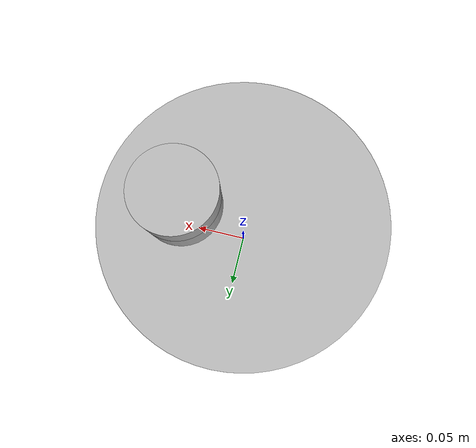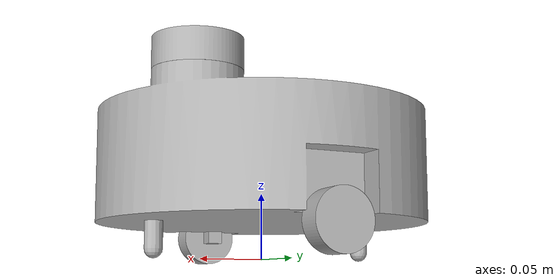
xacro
<?xml version="1.0" ?>
<robot name="amvcr" xmlns:xacro="http://www.ros.org/wiki/xacro">

<xacro:include filename="$(find amvcr_description)/urdf/materials.xacro" />
<xacro:include filename="$(find amvcr_description)/urdf/amvcr.trans" />
<xacro:include filename="$(find amvcr_description)/urdf/amvcr.gazebo" />
<link name="base_link">
  <inertial>
    <origin xyz="0.0019434846856806773 1.1685172611447414e-16 0.07153434518302298" rpy="0 0 0"/>
    <mass value="1.849317492576436"/>
    <inertia ixx="0.010933" iyy="0.011094" izz="0.017845" ixy="-0.0" iyz="0.0" ixz="-0.000233"/>
  </inertial>
  <visual>
    <origin xyz="0 0 0" rpy="0 0 0"/>
    <geometry>
      <mesh filename="file://$(find amvcr_description)/meshes/base_link.stl" scale="0.001 0.001 0.001"/>
    </geometry>
    <material name="silver"/>
  </visual>
  <collision>
    <origin xyz="0 0 0" rpy="0 0 0"/>
    <geometry>
      <mesh filename="file://$(find amvcr_description)/meshes/base_link.stl" scale="0.001 0.001 0.001"/>
    </geometry>
  </collision>
</link>

<link name="left_wheel_1">
  <inertial>
    <origin xyz="5.192212519479262e-18 0.009000170419138878 -7.450579389556289e-11" rpy="0 0 0"/>
    <mass value="0.025453686334209087"/>
    <inertia ixx="4e-06" iyy="6e-06" izz="4e-06" ixy="0.0" iyz="0.0" ixz="0.0"/>
  </inertial>
  <visual>
    <origin xyz="-0.0 -0.106049 -0.022" rpy="0 0 0"/>
    <geometry>
      <mesh filename="file://$(find amvcr_description)/meshes/left_wheel_1.stl" scale="0.001 0.001 0.001"/>
    </geometry>
    <material name="silver"/>
  </visual>
  <collision>
    <origin xyz="-0.0 -0.106049 -0.022" rpy="0 0 0"/>
    <geometry>
      <mesh filename="file://$(find amvcr_description)/meshes/left_wheel_1.stl" scale="0.001 0.001 0.001"/>
    </geometry>
  </collision>
</link>

<link name="right_wheel_1">
  <inertial>
    <origin xyz="5.192212519479262e-18 -0.009000170419138837 -7.450579389556289e-11" rpy="0 0 0"/>
    <mass value="0.025453686334209087"/>
    <inertia ixx="4e-06" iyy="6e-06" izz="4e-06" ixy="0.0" iyz="0.0" ixz="0.0"/>
  </inertial>
  <visual>
    <origin xyz="-0.0 0.106049 -0.022" rpy="0 0 0"/>
    <geometry>
      <mesh filename="file://$(find amvcr_description)/meshes/right_wheel_1.stl" scale="0.001 0.001 0.001"/>
    </geometry>
    <material name="silver"/>
  </visual>
  <collision>
    <origin xyz="-0.0 0.106049 -0.022" rpy="0 0 0"/>
    <geometry>
      <mesh filename="file://$(find amvcr_description)/meshes/right_wheel_1.stl" scale="0.001 0.001 0.001"/>
    </geometry>
  </collision>
</link>

<link name="lidar_1">
  <inertial>
    <origin xyz="1.3877787807814457e-17 -5.9081868368592115e-18 0.012500000000000039" rpy="0 0 0"/>
    <mass value="0.09159313381541043"/>
    <inertia ixx="3.3e-05" iyy="3.3e-05" izz="5.6e-05" ixy="-0.0" iyz="-0.0" ixz="0.0"/>
  </inertial>
  <visual>
    <origin xyz="-0.0535 -0.0 -0.141" rpy="0 0 0"/>
    <geometry>
      <mesh filename="file://$(find amvcr_description)/meshes/lidar_1.stl" scale="0.001 0.001 0.001"/>
    </geometry>
    <material name="silver"/>
  </visual>
  <collision>
    <origin xyz="-0.0535 -0.0 -0.141" rpy="0 0 0"/>
    <geometry>
      <mesh filename="file://$(find amvcr_description)/meshes/lidar_1.stl" scale="0.001 0.001 0.001"/>
    </geometry>
  </collision>
</link>

<joint name="basetoleft" type="continuous">
  <origin xyz="0.0 0.106049 0.022" rpy="0 0 0"/>
  <parent link="base_link"/>
  <child link="left_wheel_1"/>
  <axis xyz="0.0 1.0 0.0"/>
</joint>

<joint name="basetoright" type="continuous">
  <origin xyz="0.0 -0.106049 0.022" rpy="0 0 0"/>
  <parent link="base_link"/>
  <child link="right_wheel_1"/>
  <axis xyz="0.0 -1.0 0.0"/>
</joint>

<joint name="basetolidar" type="continuous">
  <origin xyz="0.0535 0.0 0.141" rpy="0 0 0"/>
  <parent link="base_link"/>
  <child link="lidar_1"/>
  <axis xyz="0.0 0.0 1.0"/>
</joint>

</robot>

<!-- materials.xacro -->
<robot name="amvcr" xmlns:xacro="http://www.ros.org/wiki/xacro" >

<material name="silver">
  <color rgba="0.700 0.700 0.700 1.000"/>
</material>

</robot>

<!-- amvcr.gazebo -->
<robot name="amvcr" xmlns:xacro="http://www.ros.org/wiki/xacro" >

<xacro:property name="body_color" value="Gazebo/Silver" />

<gazebo>
  <plugin name="control" filename="libgazebo_ros_control.so"/>
</gazebo>
<gazebo reference="base_link">
  <material>${body_color}</material>
  <mu1>0.2</mu1>
  <mu2>0.2</mu2>
  <self_collide>true</self_collide>
  <gravity>true</gravity>
</gazebo>

<gazebo reference="left_wheel_1">
  <material>${body_color}</material>
  <mu1>0.2</mu1>
  <mu2>0.2</mu2>
  <self_collide>true</self_collide>
</gazebo>

<gazebo reference="right_wheel_1">
  <material>${body_color}</material>
  <mu1>0.2</mu1>
  <mu2>0.2</mu2>
  <self_collide>true</self_collide>
</gazebo>

<gazebo reference="lidar_1">
  <material>${body_color}</material>
  <mu1>0.2</mu1>
  <mu2>0.2</mu2>
  <self_collide>true</self_collide>
</gazebo>

</robot>
